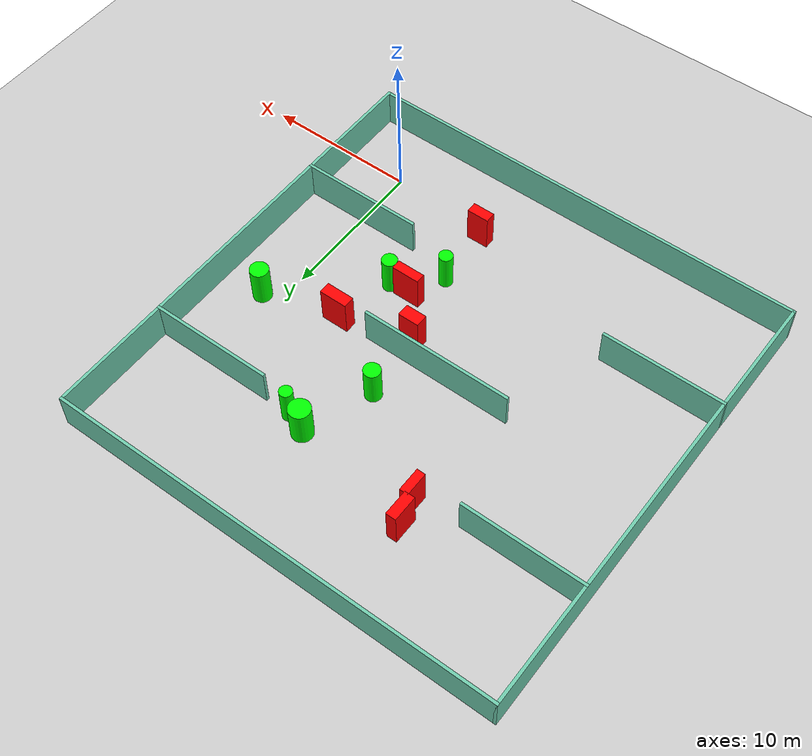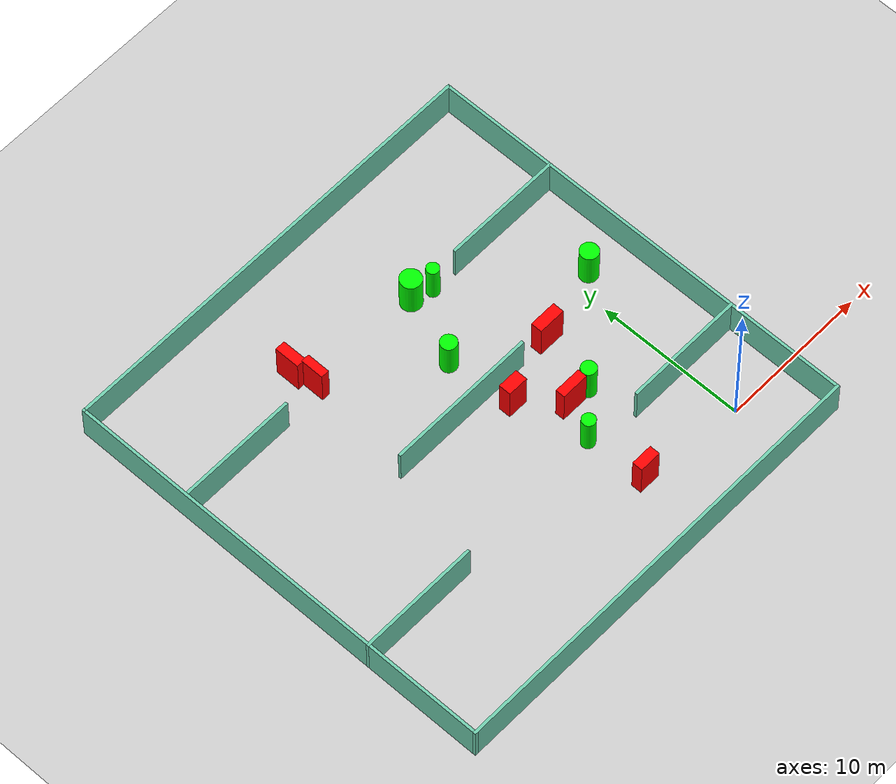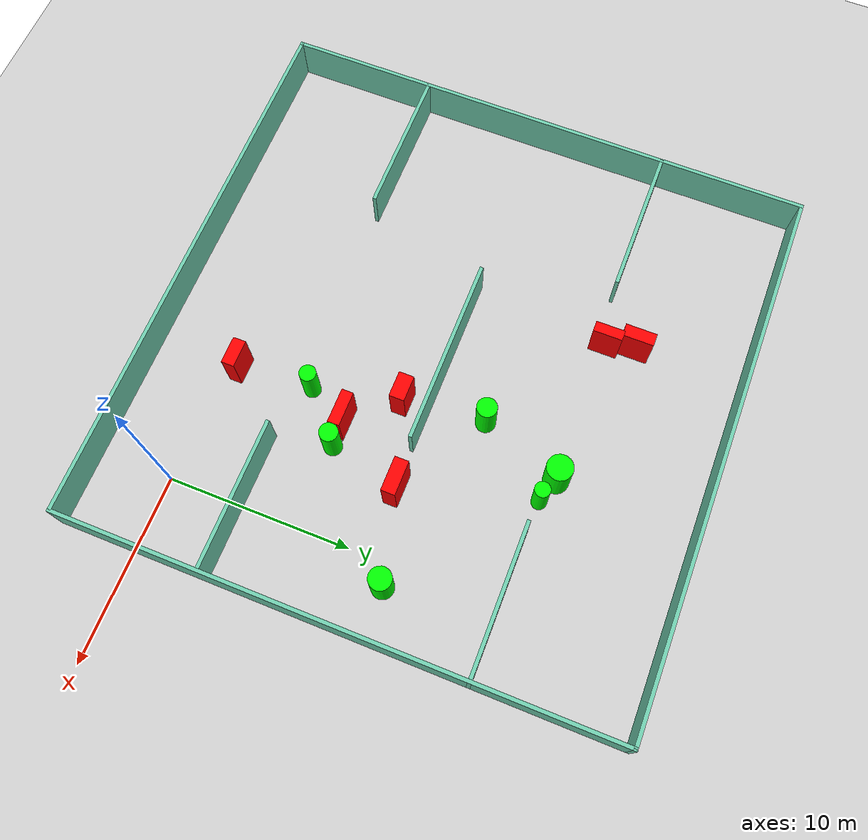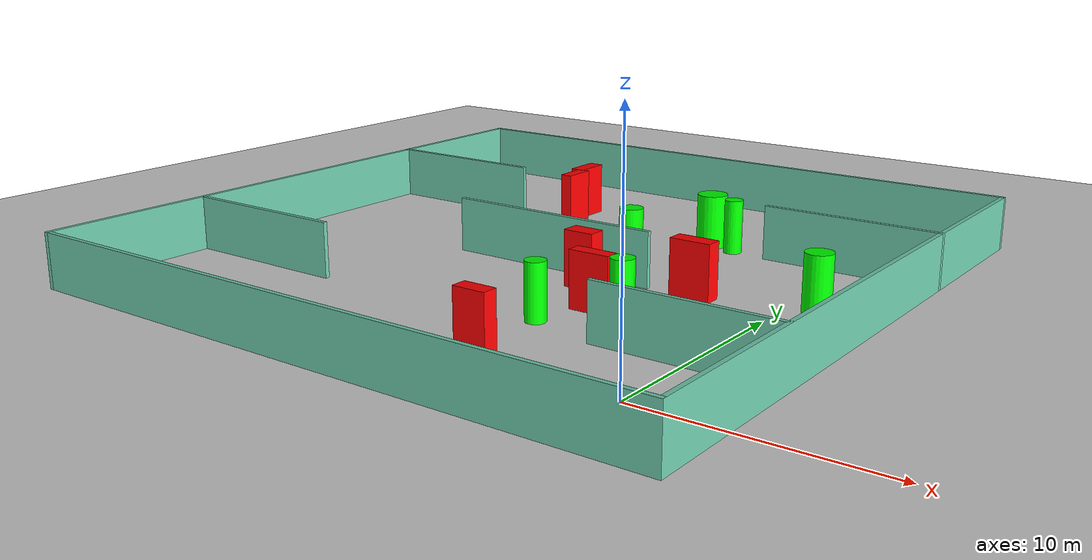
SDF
<sdf version="1.7">
 <world name="default">
  <light name="sun" type="directional">
   <pose>0 0 10 0 -0 0</pose>
   <diffuse>0.8 0.8 0.8 1</diffuse>
   <specular>0.2 0.2 0.2 1</specular>
   <attenuation>
    <range>1000</range>
    <constant>0.9</constant>
    <linear>0.01</linear>
    <quadratic>0.001</quadratic>
   </attenuation>
   <direction>-0.5 0.1 -0.9</direction>
   <spot><inner_angle>0</inner_angle><outer_angle>0</outer_angle><falloff>0</falloff></spot>
  </light>
  <model name="ground_plane">
   <static>1</static>
   <link name="link">
    <collision name="collision">
     <geometry><plane><normal>0 0 1</normal><size>100 100</size></plane></geometry>
     <surface>
      <contact><collide_bitmask>65535</collide_bitmask></contact>
      <friction><ode><mu>100</mu><mu2>50</mu2></ode></friction>
     </surface>
    </collision>
    <visual name="visual">
     <cast_shadows>0</cast_shadows>
     <geometry><plane><normal>0 0 1</normal><size>100 100</size></plane></geometry>
     <material>
      <script><uri>file://media/materials/scripts/gazebo.material</uri><name>Gazebo/Grey</name></script>
     </material>
    </visual>
   </link>
  </model>
  <gravity>0 0 -9.8</gravity>
  <magnetic_field>6e-06 2.3e-05 -4.2e-05</magnetic_field>
  <atmosphere type="adiabatic"/>
  <physics type="ode">
   <max_step_size>0.001</max_step_size>
   <real_time_factor>1</real_time_factor>
   <real_time_update_rate>1000</real_time_update_rate>
  </physics>
  <scene><ambient>0.4 0.4 0.4 1</ambient><background>0.7 0.7 0.7 1</background><shadows>1</shadows></scene>
  <spherical_coordinates>
   <surface_model>EARTH_WGS84</surface_model>
   <latitude_deg>0</latitude_deg>
   <longitude_deg>0</longitude_deg>
   <elevation>0</elevation>
   <heading_deg>0</heading_deg>
  </spherical_coordinates>
  <model name="my_base_walls">
   <link name="Wall_10">
    <collision name="Wall_10_Collision">
     <geometry><box><size>8.2 0.2 2.5</size></box></geometry>
     <pose>0 0 1.25 0 -0 0</pose>
    </collision>
    <visual name="Wall_10_Visual">
     <pose>0 0 1.25 0 -0 0</pose>
     <geometry><box><size>8.2 0.2 2.5</size></box></geometry>
     <material>
      <script><uri>file://media/materials/scripts/gazebo.material</uri><name>Gazebo/Grey</name></script>
      <ambient>0.435294 0.796078 0.67451 1</ambient>
     </material>
     <meta><layer>0</layer></meta>
    </visual>
    <pose>-11 -7 0 0 -0 0</pose>
   </link>
   <link name="Wall_12">
    <collision name="Wall_12_Collision">
     <geometry><box><size>8.2 0.2 2.5</size></box></geometry>
     <pose>0 0 1.25 0 -0 0</pose>
    </collision>
    <visual name="Wall_12_Visual">
     <pose>0 0 1.25 0 -0 0</pose>
     <geometry><box><size>8.2 0.2 2.5</size></box></geometry>
     <material>
      <script><uri>file://media/materials/scripts/gazebo.material</uri><name>Gazebo/Grey</name></script>
      <ambient>0.435294 0.796078 0.67451 1</ambient>
     </material>
     <meta><layer>0</layer></meta>
    </visual>
    <pose>-11 7 0 0 -0 0</pose>
   </link>
   <link name="Wall_14">
    <collision name="Wall_14_Collision">
     <geometry><box><size>8.2 0.2 2.5</size></box></geometry>
     <pose>0 0 1.25 0 -0 0</pose>
    </collision>
    <visual name="Wall_14_Visual">
     <pose>0 0 1.25 0 -0 0</pose>
     <geometry><box><size>8.2 0.2 2.5</size></box></geometry>
     <material>
      <script><uri>file://media/materials/scripts/gazebo.material</uri><name>Gazebo/Grey</name></script>
      <ambient>0.435294 0.796078 0.67451 1</ambient>
     </material>
     <meta><layer>0</layer></meta>
    </visual>
    <pose>11 7 0 0 -0 3.14159</pose>
   </link>
   <link name="Wall_16">
    <collision name="Wall_16_Collision">
     <geometry><box><size>10.2 0.2 2.5</size></box></geometry>
     <pose>0 0 1.25 0 -0 0</pose>
    </collision>
    <visual name="Wall_16_Visual">
     <pose>0 0 1.25 0 -0 0</pose>
     <geometry><box><size>10.2 0.2 2.5</size></box></geometry>
     <material>
      <script><uri>file://media/materials/scripts/gazebo.material</uri><name>Gazebo/Grey</name></script>
      <ambient>0.435294 0.796078 0.67451 1</ambient>
     </material>
     <meta><layer>0</layer></meta>
    </visual>
    <pose>0 0 0 0 -0 3.14159</pose>
   </link>
   <link name="Wall_2">
    <collision name="Wall_2_Collision">
     <geometry><box><size>30.2 0.2 2.5</size></box></geometry>
     <pose>0 0 1.25 0 -0 0</pose>
    </collision>
    <visual name="Wall_2_Visual">
     <pose>0 0 1.25 0 -0 0</pose>
     <geometry><box><size>30.2 0.2 2.5</size></box></geometry>
     <material>
      <script><uri>file://media/materials/scripts/gazebo.material</uri><name>Gazebo/Grey</name></script>
      <ambient>0.435294 0.796078 0.67451 1</ambient>
     </material>
     <meta><layer>0</layer></meta>
    </visual>
    <pose>0 -15 0 0 -0 3.14159</pose>
   </link>
   <link name="Wall_3">
    <collision name="Wall_3_Collision">
     <geometry><box><size>30.2 0.2 2.5</size></box></geometry>
     <pose>0 0 1.25 0 -0 0</pose>
    </collision>
    <visual name="Wall_3_Visual">
     <pose>0 0 1.25 0 -0 0</pose>
     <geometry><box><size>30.2 0.2 2.5</size></box></geometry>
     <material>
      <script><uri>file://media/materials/scripts/gazebo.material</uri><name>Gazebo/Grey</name></script>
      <ambient>0.435294 0.796078 0.67451 1</ambient>
     </material>
     <meta><layer>0</layer></meta>
    </visual>
    <pose>-15 0 0 0 -0 1.5708</pose>
   </link>
   <link name="Wall_4">
    <collision name="Wall_4_Collision">
     <geometry><box><size>30.2 0.2 2.5</size></box></geometry>
     <pose>0 0 1.25 0 -0 0</pose>
    </collision>
    <visual name="Wall_4_Visual">
     <pose>0 0 1.25 0 -0 0</pose>
     <geometry><box><size>30.2 0.2 2.5</size></box></geometry>
     <material>
      <script><uri>file://media/materials/scripts/gazebo.material</uri><name>Gazebo/Grey</name></script>
      <ambient>0.435294 0.796078 0.67451 1</ambient>
     </material>
     <meta><layer>0</layer></meta>
    </visual>
    <pose>0 15 0 0 -0 0</pose>
   </link>
   <link name="Wall_6">
    <collision name="Wall_6_Collision">
     <geometry><box><size>30.2 0.2 2.5</size></box></geometry>
     <pose>0 0 1.25 0 -0 0</pose>
    </collision>
    <visual name="Wall_6_Visual">
     <pose>0 0 1.25 0 -0 0</pose>
     <geometry><box><size>30.2 0.2 2.5</size></box></geometry>
     <material>
      <script><uri>file://media/materials/scripts/gazebo.material</uri><name>Gazebo/Grey</name></script>
      <ambient>0.435294 0.796078 0.67451 1</ambient>
     </material>
     <meta><layer>0</layer></meta>
    </visual>
    <pose>15 0 0 0 -0 1.5708</pose>
   </link>
   <link name="Wall_8">
    <collision name="Wall_8_Collision">
     <geometry><box><size>8.2 0.2 2.5</size></box></geometry>
     <pose>0 0 1.25 0 -0 0</pose>
    </collision>
    <visual name="Wall_8_Visual">
     <pose>0 0 1.25 0 -0 0</pose>
     <geometry><box><size>8.2 0.2 2.5</size></box></geometry>
     <material>
      <script><uri>file://media/materials/scripts/gazebo.material</uri><name>Gazebo/Grey</name></script>
      <ambient>0.435294 0.796078 0.67451 1</ambient>
     </material>
     <meta><layer>0</layer></meta>
    </visual>
    <pose>11 -7 0 0 -0 3.14159</pose>
   </link>
   <static>1</static>
   <pose>-11 11 0 0 -0 0</pose>
  </model>
  <model name="cylinder1">
   <static>1</static>
   <link name="link">
    <inertial>
     <mass>1</mass>
     <inertia><ixx>0.5</ixx><ixy>0</ixy><ixz>0</ixz><iyy>0.5</iyy><iyz>0</iyz><izz>1</izz></inertia>
    </inertial>
    <collision name="collision">
     <geometry><cylinder><radius>0.5444558166381991</radius><length>2.5</length></cylinder></geometry>
    </collision>
    <visual name="visual">
     <geometry><cylinder><radius>0.5444558166381991</radius><length>2.5</length></cylinder></geometry>
     <material>
      <ambient>0 1 0 1</ambient>
      <diffuse>0 1 0 1</diffuse>
      <specular>0.1 0.1 0.1 1</specular>
      <emissive>0 0 0 0</emissive>
     </material>
    </visual>
   </link>
   <pose>-8.775391646882255 14.053082219049013 1.25 0 0 0</pose>
  </model>
  <model name="cylinder2">
   <static>1</static>
   <link name="link">
    <inertial>
     <mass>1</mass>
     <inertia><ixx>0.5</ixx><ixy>0</ixy><ixz>0</ixz><iyy>0.5</iyy><iyz>0</iyz><izz>1</izz></inertia>
    </inertial>
    <collision name="collision">
     <geometry><cylinder><radius>0.5041819954458767</radius><length>2.5</length></cylinder></geometry>
    </collision>
    <visual name="visual">
     <geometry><cylinder><radius>0.5041819954458767</radius><length>2.5</length></cylinder></geometry>
     <material>
      <ambient>0 1 0 1</ambient>
      <diffuse>0 1 0 1</diffuse>
      <specular>0.1 0.1 0.1 1</specular>
      <emissive>0 0 0 0</emissive>
     </material>
    </visual>
   </link>
   <pose>-4.641694499068539 7.096503824769233 1.25 0 0 0</pose>
  </model>
  <model name="cylinder3">
   <static>1</static>
   <link name="link">
    <inertial>
     <mass>1</mass>
     <inertia><ixx>0.5</ixx><ixy>0</ixy><ixz>0</ixz><iyy>0.5</iyy><iyz>0</iyz><izz>1</izz></inertia>
    </inertial>
    <collision name="collision">
     <geometry><cylinder><radius>0.45302400547336463</radius><length>2.5</length></cylinder></geometry>
    </collision>
    <visual name="visual">
     <geometry><cylinder><radius>0.45302400547336463</radius><length>2.5</length></cylinder></geometry>
     <material>
      <ambient>0 1 0 1</ambient>
      <diffuse>0 1 0 1</diffuse>
      <specular>0.1 0.1 0.1 1</specular>
      <emissive>0 0 0 0</emissive>
     </material>
    </visual>
   </link>
   <pose>-7.1618700517873535 4.808356607559844 1.25 0 0 0</pose>
  </model>
  <model name="cylinder4">
   <static>1</static>
   <link name="link">
    <inertial>
     <mass>1</mass>
     <inertia><ixx>0.5</ixx><ixy>0</ixy><ixz>0</ixz><iyy>0.5</iyy><iyz>0</iyz><izz>1</izz></inertia>
    </inertial>
    <collision name="collision">
     <geometry><cylinder><radius>0.41845014421958016</radius><length>2.5</length></cylinder></geometry>
    </collision>
    <visual name="visual">
     <geometry><cylinder><radius>0.41845014421958016</radius><length>2.5</length></cylinder></geometry>
     <material>
      <ambient>0 1 0 1</ambient>
      <diffuse>0 1 0 1</diffuse>
      <specular>0.1 0.1 0.1 1</specular>
      <emissive>0 0 0 0</emissive>
     </material>
    </visual>
   </link>
   <pose>-5.7764448147458385 18.10362108267167 1.25 0 0 0</pose>
  </model>
  <model name="cylinder5">
   <static>1</static>
   <link name="link">
    <inertial>
     <mass>1</mass>
     <inertia><ixx>0.5</ixx><ixy>0</ixy><ixz>0</ixz><iyy>0.5</iyy><iyz>0</iyz><izz>1</izz></inertia>
    </inertial>
    <collision name="collision">
     <geometry><cylinder><radius>0.6079262579483743</radius><length>2.5</length></cylinder></geometry>
    </collision>
    <visual name="visual">
     <geometry><cylinder><radius>0.6079262579483743</radius><length>2.5</length></cylinder></geometry>
     <material>
      <ambient>0 1 0 1</ambient>
      <diffuse>0 1 0 1</diffuse>
      <specular>0.1 0.1 0.1 1</specular>
      <emissive>0 0 0 0</emissive>
     </material>
    </visual>
   </link>
   <pose>1.165503566241263 12.33780137507242 1.25 0 0 0</pose>
  </model>
  <model name="cylinder6">
   <static>1</static>
   <link name="link">
    <inertial>
     <mass>1</mass>
     <inertia><ixx>0.5</ixx><ixy>0</ixy><ixz>0</ixz><iyy>0.5</iyy><iyz>0</iyz><izz>1</izz></inertia>
    </inertial>
    <collision name="collision">
     <geometry><cylinder><radius>0.6999008630761123</radius><length>2.5</length></cylinder></geometry>
    </collision>
    <visual name="visual">
     <geometry><cylinder><radius>0.6999008630761123</radius><length>2.5</length></cylinder></geometry>
     <material>
      <ambient>0 1 0 1</ambient>
      <diffuse>0 1 0 1</diffuse>
      <specular>0.1 0.1 0.1 1</specular>
      <emissive>0 0 0 0</emissive>
     </material>
    </visual>
   </link>
   <pose>-7.14288165237023 18.538644221806106 1.25 0 0 0</pose>
  </model>
  <model name="box1">
   <static>1</static>
   <link name="link">
    <inertial>
     <mass>1</mass>
     <inertia><ixx>0.083</ixx><ixy>0</ixy><ixz>0</ixz><iyy>0.083</iyy><iyz>0</iyz><izz>0.083</izz></inertia>
    </inertial>
    <collision name="collision">
     <geometry><box><size>0.6838403441313273 1.7044569582032927 2.5</size></box></geometry>
    </collision>
    <visual name="visual">
     <geometry><box><size>0.6838403441313273 1.7044569582032927 2.5</size></box></geometry>
     <material>
      <ambient>1 0 0 1</ambient>
      <diffuse>1 0 0 1</diffuse>
      <specular>0.1 0.1 0.1 1</specular>
      <emissive>0 0 0 0</emissive>
     </material>
    </visual>
    <sensor name="my_contact" type="contact">
     <contact><collision>box_collision</collision><topic>__default_topic__</topic></contact>
    </sensor>
   </link>
   <pose>-15.433259620340326 20.060033786372532 1.25 0 0 0</pose>
  </model>
  <model name="box2">
   <static>1</static>
   <link name="link">
    <inertial>
     <mass>1</mass>
     <inertia><ixx>0.083</ixx><ixy>0</ixy><ixz>0</ixz><iyy>0.083</iyy><iyz>0</iyz><izz>0.083</izz></inertia>
    </inertial>
    <collision name="collision">
     <geometry><box><size>1.3966754459205153 0.8298451951448338 2.5</size></box></geometry>
    </collision>
    <visual name="visual">
     <geometry><box><size>1.3966754459205153 0.8298451951448338 2.5</size></box></geometry>
     <material>
      <ambient>1 0 0 1</ambient>
      <diffuse>1 0 0 1</diffuse>
      <specular>0.1 0.1 0.1 1</specular>
      <emissive>0 0 0 0</emissive>
     </material>
    </visual>
    <sensor name="my_contact" type="contact">
     <contact><collision>box_collision</collision><topic>__default_topic__</topic></contact>
    </sensor>
   </link>
   <pose>-8.255931371870691 9.580606298118251 1.25 0 0 0</pose>
  </model>
  <model name="box3">
   <static>1</static>
   <link name="link">
    <inertial>
     <mass>1</mass>
     <inertia><ixx>0.083</ixx><ixy>0</ixy><ixz>0</ixz><iyy>0.083</iyy><iyz>0</iyz><izz>0.083</izz></inertia>
    </inertial>
    <collision name="collision">
     <geometry><box><size>1.4808303908109997 0.7036358424178611 2.5</size></box></geometry>
    </collision>
    <visual name="visual">
     <geometry><box><size>1.4808303908109997 0.7036358424178611 2.5</size></box></geometry>
     <material>
      <ambient>1 0 0 1</ambient>
      <diffuse>1 0 0 1</diffuse>
      <specular>0.1 0.1 0.1 1</specular>
      <emissive>0 0 0 0</emissive>
     </material>
    </visual>
    <sensor name="my_contact" type="contact">
     <contact><collision>box_collision</collision><topic>__default_topic__</topic></contact>
    </sensor>
   </link>
   <pose>-6.843795312221651 0.7611682949093987 1.25 0 0 0</pose>
  </model>
  <model name="box4">
   <static>1</static>
   <link name="link">
    <inertial>
     <mass>1</mass>
     <inertia><ixx>0.083</ixx><ixy>0</ixy><ixz>0</ixz><iyy>0.083</iyy><iyz>0</iyz><izz>0.083</izz></inertia>
    </inertial>
    <collision name="collision">
     <geometry><box><size>1.8702588422066142 0.6368581007076535 2.5</size></box></geometry>
    </collision>
    <visual name="visual">
     <geometry><box><size>1.8702588422066142 0.6368581007076535 2.5</size></box></geometry>
     <material>
      <ambient>1 0 0 1</ambient>
      <diffuse>1 0 0 1</diffuse>
      <specular>0.1 0.1 0.1 1</specular>
      <emissive>0 0 0 0</emissive>
     </material>
    </visual>
    <sensor name="my_contact" type="contact">
     <contact><collision>box_collision</collision><topic>__default_topic__</topic></contact>
    </sensor>
   </link>
   <pose>-6.073615875161469 7.126484330190518 1.25 0 0 0</pose>
  </model>
  <model name="box5">
   <static>1</static>
   <link name="link">
    <inertial>
     <mass>1</mass>
     <inertia><ixx>0.083</ixx><ixy>0</ixy><ixz>0</ixz><iyy>0.083</iyy><iyz>0</iyz><izz>0.083</izz></inertia>
    </inertial>
    <collision name="collision">
     <geometry><box><size>1.8648349987930417 0.7671071372682539 2.5</size></box></geometry>
    </collision>
    <visual name="visual">
     <geometry><box><size>1.8648349987930417 0.7671071372682539 2.5</size></box></geometry>
     <material>
      <ambient>1 0 0 1</ambient>
      <diffuse>1 0 0 1</diffuse>
      <specular>0.1 0.1 0.1 1</specular>
      <emissive>0 0 0 0</emissive>
     </material>
    </visual>
    <sensor name="my_contact" type="contact">
     <contact><collision>box_collision</collision><topic>__default_topic__</topic></contact>
    </sensor>
   </link>
   <pose>-3.7708270436246387 11.064057679395816 1.25 0 0 0</pose>
  </model>
  <model name="box6">
   <static>1</static>
   <link name="link">
    <inertial>
     <mass>1</mass>
     <inertia><ixx>0.083</ixx><ixy>0</ixy><ixz>0</ixz><iyy>0.083</iyy><iyz>0</iyz><izz>0.083</izz></inertia>
    </inertial>
    <collision name="collision">
     <geometry><box><size>0.5686544436573413 1.5840338622235755 2.5</size></box></geometry>
    </collision>
    <visual name="visual">
     <geometry><box><size>0.5686544436573413 1.5840338622235755 2.5</size></box></geometry>
     <material>
      <ambient>1 0 0 1</ambient>
      <diffuse>1 0 0 1</diffuse>
      <specular>0.1 0.1 0.1 1</specular>
      <emissive>0 0 0 0</emissive>
     </material>
    </visual>
    <sensor name="my_contact" type="contact">
     <contact><collision>box_collision</collision><topic>__default_topic__</topic></contact>
    </sensor>
   </link>
   <pose>-15.069009491797008 18.505147064175198 1.25 0 0 0</pose>
  </model>
 </world>
</sdf>
